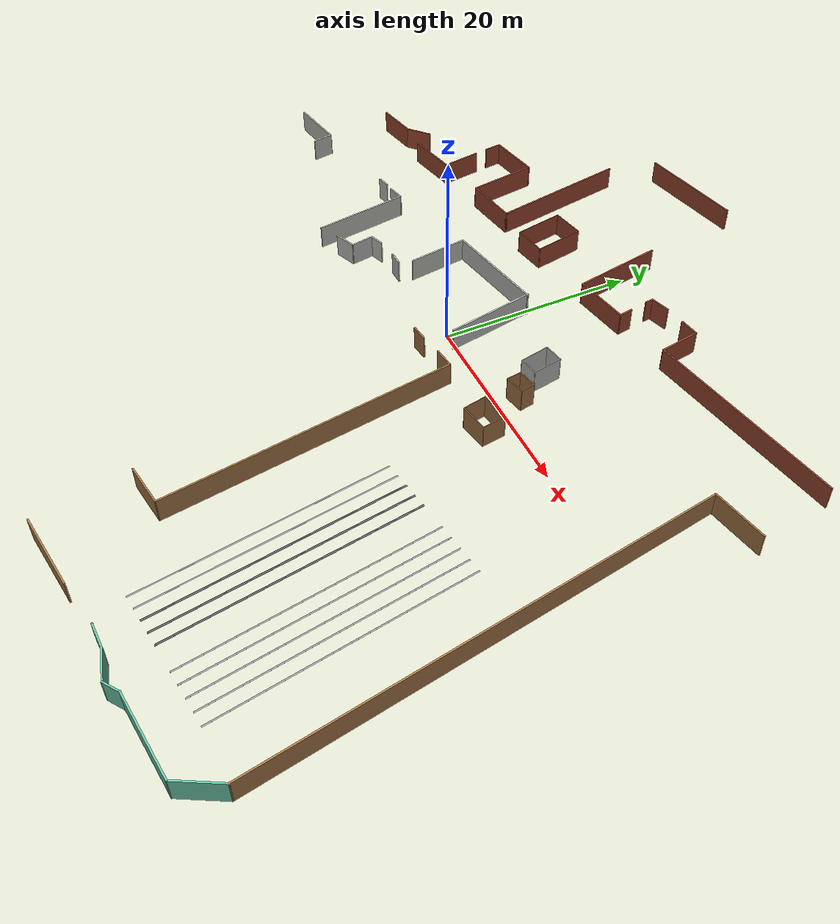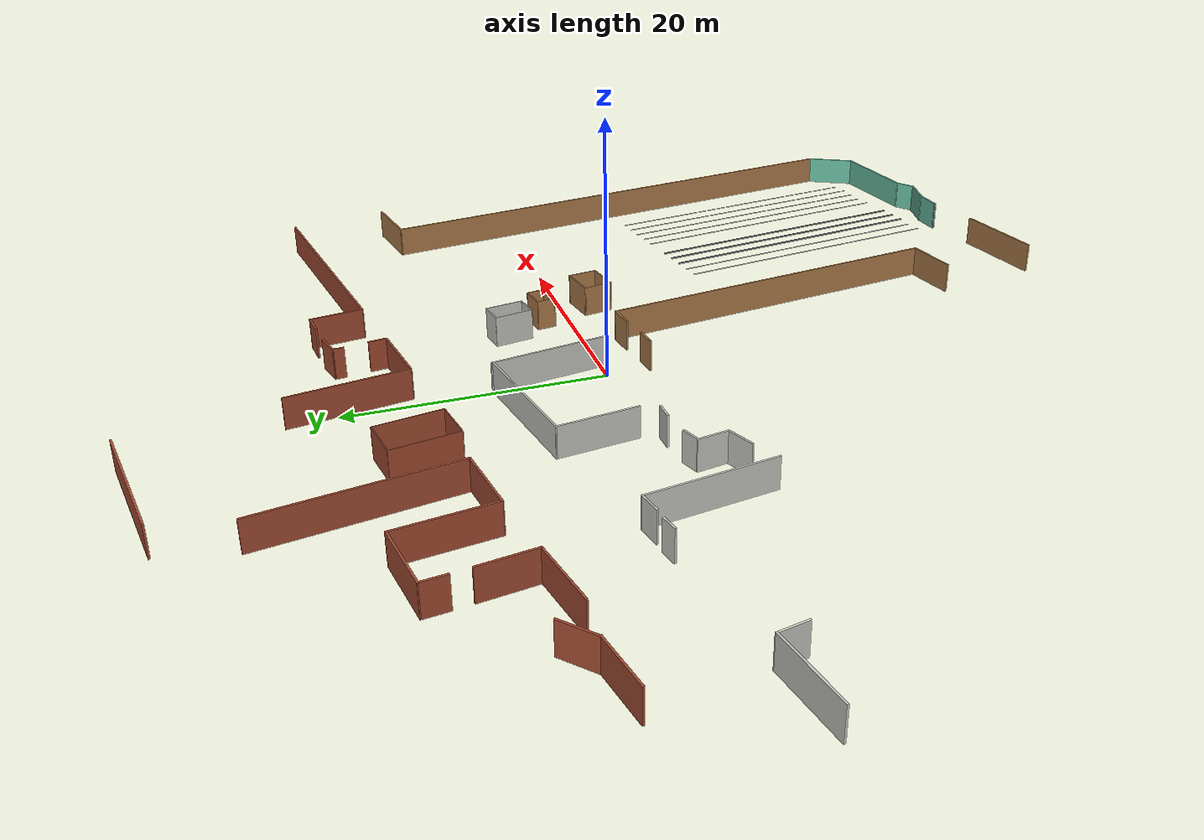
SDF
<sdf version="1.7">
 <world name="default">
  <model name="riseholme_encolsure">
   <link name="Wall_10">
    <pose>37.9809 28.2217 0 0 -0 -0.71569</pose>
    <collision name="Wall_10_Collision">
     <geometry><box><size>4.40408 0.15 2.5</size></box></geometry>
     <pose>0 0 1.25 0.0 0.0 0.0</pose>
    </collision>
    <visual name="Wall_10_Visual">
     <geometry><box><size>4.40408 0.15 2.5</size></box></geometry>
     <material>
      <ambient>0.435294 0.796078 0.67451 1</ambient>
      <script><uri>file://media/materials/scripts/gazebo.material</uri><name>Gazebo/Grey</name></script>
     </material>
     <pose>0 0 1.25 0.0 0.0 0.0</pose>
     <meta><layer>0</layer></meta>
    </visual>
   </link>
   <link name="Wall_100">
    <pose>-13.3343 -20.6396 0 0 -0 -1.5708</pose>
    <collision name="Wall_100_Collision">
     <geometry><box><size>1.38035 0.15 2.5</size></box></geometry>
     <pose>0 0 1.25 0.0 0.0 0.0</pose>
    </collision>
    <visual name="Wall_100_Visual">
     <geometry><box><size>1.38035 0.15 2.5</size></box></geometry>
     <material>
      <ambient>1 1 1 1</ambient>
      <script><uri>file://media/materials/scripts/gazebo.material</uri><name>Gazebo/CeilingTiled</name></script>
     </material>
     <pose>0 0 1.25 0.0 0.0 0.0</pose>
     <meta><layer>0</layer></meta>
    </visual>
   </link>
   <link name="Wall_102">
    <pose>-21.5336 -0.928753 0 0 -0 -0.039709</pose>
    <collision name="Wall_102_Collision">
     <geometry><box><size>5.25909 0.07 2.5</size></box></geometry>
     <pose>0 0 1.25 0.0 0.0 0.0</pose>
    </collision>
    <visual name="Wall_102_Visual">
     <geometry><box><size>5.25909 0.07 2.5</size></box></geometry>
     <material>
      <ambient>1 1 1 1</ambient>
      <script><uri>file://media/materials/scripts/gazebo.material</uri><name>Gazebo/Bricks</name></script>
     </material>
     <pose>0 0 1.25 0.0 0.0 0.0</pose>
     <meta><layer>0</layer></meta>
    </visual>
   </link>
   <link name="Wall_103">
    <pose>-19.0441 -2.73925 0 0 -0 -1.63105</pose>
    <collision name="Wall_103_Collision">
     <geometry><box><size>3.49121 0.07 2.5</size></box></geometry>
     <pose>0 0 1.25 0.0 0.0 0.0</pose>
    </collision>
    <visual name="Wall_103_Visual">
     <geometry><box><size>3.49121 0.07 2.5</size></box></geometry>
     <material>
      <ambient>1 1 1 1</ambient>
      <script><uri>file://media/materials/scripts/gazebo.material</uri><name>Gazebo/Bricks</name></script>
     </material>
     <pose>0 0 1.25 0.0 0.0 0.0</pose>
     <meta><layer>0</layer></meta>
    </visual>
   </link>
   <link name="Wall_104">
    <pose>-21.7333 -4.34992 0 0 -0 3.10417</pose>
    <collision name="Wall_104_Collision">
     <geometry><box><size>5.24692 0.07 2.5</size></box></geometry>
     <pose>0 0 1.25 0.0 0.0 0.0</pose>
    </collision>
    <visual name="Wall_104_Visual">
     <geometry><box><size>5.24692 0.07 2.5</size></box></geometry>
     <material>
      <ambient>1 1 1 1</ambient>
      <script><uri>file://media/materials/scripts/gazebo.material</uri><name>Gazebo/Bricks</name></script>
     </material>
     <pose>0 0 1.25 0.0 0.0 0.0</pose>
     <meta><layer>0</layer></meta>
    </visual>
   </link>
   <link name="Wall_105">
    <pose>-24.2229 -2.53786 0 0 -0 1.51436</pose>
    <collision name="Wall_105_Collision">
     <geometry><box><size>3.49429 0.07 2.5</size></box></geometry>
     <pose>0 0 1.25 0.0 0.0 0.0</pose>
    </collision>
    <visual name="Wall_105_Visual">
     <geometry><box><size>3.49429 0.07 2.5</size></box></geometry>
     <material>
      <ambient>1 1 1 1</ambient>
      <script><uri>file://media/materials/scripts/gazebo.material</uri><name>Gazebo/Bricks</name></script>
     </material>
     <pose>0 0 1.25 0.0 0.0 0.0</pose>
     <meta><layer>0</layer></meta>
    </visual>
   </link>
   <link name="Wall_11">
    <pose>39.2604 22.8017 0 0 -0 -1.6515</pose>
    <collision name="Wall_11_Collision">
     <geometry><box><size>8.22495 0.15 2.5</size></box></geometry>
     <pose>0 0 1.25 0.0 0.0 0.0</pose>
    </collision>
    <visual name="Wall_11_Visual">
     <geometry><box><size>8.22495 0.15 2.5</size></box></geometry>
     <material>
      <ambient>0.435294 0.796078 0.67451 1</ambient>
      <script><uri>file://media/materials/scripts/gazebo.material</uri><name>Gazebo/Grey</name></script>
     </material>
     <pose>0 0 1.25 0.0 0.0 0.0</pose>
     <meta><layer>0</layer></meta>
    </visual>
   </link>
   <link name="Wall_12">
    <pose>39.2604 18.0097 0 0 -0 -1.16969</pose>
    <collision name="Wall_12_Collision">
     <geometry><box><size>1.81774 0.15 2.5</size></box></geometry>
     <pose>0 0 1.25 0.0 0.0 0.0</pose>
    </collision>
    <visual name="Wall_12_Visual">
     <geometry><box><size>1.81774 0.15 2.5</size></box></geometry>
     <material>
      <ambient>0.435294 0.796078 0.67451 1</ambient>
      <script><uri>file://media/materials/scripts/gazebo.material</uri><name>Gazebo/Grey</name></script>
     </material>
     <pose>0 0 1.25 0.0 0.0 0.0</pose>
     <meta><layer>0</layer></meta>
    </visual>
   </link>
   <link name="Wall_13">
    <pose>38.9349 15.8932 0 0 -0 -2.02041</pose>
    <collision name="Wall_13_Collision">
     <geometry><box><size>3.14637 0.15 2.5</size></box></geometry>
     <pose>0 0 1.25 0.0 0.0 0.0</pose>
    </collision>
    <visual name="Wall_13_Visual">
     <geometry><box><size>3.14637 0.15 2.5</size></box></geometry>
     <material>
      <ambient>0.435294 0.796078 0.67451 1</ambient>
      <script><uri>file://media/materials/scripts/gazebo.material</uri><name>Gazebo/Grey</name></script>
     </material>
     <pose>0 0 1.25 0.0 0.0 0.0</pose>
     <meta><layer>0</layer></meta>
    </visual>
   </link>
   <link name="Wall_14">
    <pose>38.0974 13.4042 0 0 -0 -1.73296</pose>
    <collision name="Wall_14_Collision">
     <geometry><box><size>2.45986 0.15 2.5</size></box></geometry>
     <pose>0 0 1.25 0.0 0.0 0.0</pose>
    </collision>
    <visual name="Wall_14_Visual">
     <geometry><box><size>2.45986 0.15 2.5</size></box></geometry>
     <material>
      <ambient>0.435294 0.796078 0.67451 1</ambient>
      <script><uri>file://media/materials/scripts/gazebo.material</uri><name>Gazebo/Grey</name></script>
     </material>
     <pose>0 0 1.25 0.0 0.0 0.0</pose>
     <meta><layer>0</layer></meta>
    </visual>
   </link>
   <link name="Wall_15">
    <pose>37.9161 12.2642 0 0 -0 -0.015821</pose>
    <collision name="Wall_15_Collision">
     <geometry><box><size>0.16 0.15 2.5</size></box></geometry>
     <pose>0 0 1.25 0.0 0.0 0.0</pose>
    </collision>
    <visual name="Wall_15_Visual">
     <geometry><box><size>0.16 0.15 2.5</size></box></geometry>
     <material>
      <ambient>1 1 1 1</ambient>
      <script><uri>file://media/materials/scripts/gazebo.material</uri><name>Gazebo/Grey</name></script>
     </material>
     <pose>0 0 1.25 0.0 0.0 0.0</pose>
     <meta><layer>0</layer></meta>
    </visual>
   </link>
   <link name="Wall_17">
    <pose>37.7484 3.75021 0 0 -0 -1.62562</pose>
    <collision name="Wall_17_Collision">
     <geometry><box><size>7.7914 0.15 2.5</size></box></geometry>
     <pose>0 0 1.25 0.0 0.0 0.0</pose>
    </collision>
    <visual name="Wall_17_Visual">
     <geometry><box><size>7.7914 0.15 2.5</size></box></geometry>
     <material>
      <ambient>1 1 1 1</ambient>
      <script><uri>file://media/materials/scripts/gazebo.material</uri><name>Gazebo/Wood</name></script>
     </material>
     <pose>0 0 1.25 0.0 0.0 0.0</pose>
     <meta><layer>0</layer></meta>
    </visual>
   </link>
   <link name="Wall_19">
    <pose>28.3339 2.41776 0 0 -0 1.51709</pose>
    <collision name="Wall_19_Collision">
     <geometry><box><size>4.48297 0.15 2.5</size></box></geometry>
     <pose>0 0 1.25 0.0 0.0 0.0</pose>
    </collision>
    <visual name="Wall_19_Visual">
     <geometry><box><size>4.48297 0.15 2.5</size></box></geometry>
     <material>
      <ambient>1 1 1 1</ambient>
      <script><uri>file://media/materials/scripts/gazebo.material</uri><name>Gazebo/Wood</name></script>
     </material>
     <pose>0 0 1.25 0.0 0.0 0.0</pose>
     <meta><layer>0</layer></meta>
    </visual>
   </link>
   <link name="Wall_20">
    <pose>13.7719 5.65117 0 0 -0 3.06882</pose>
    <collision name="Wall_20_Collision">
     <geometry><box><size>29.5845 0.15 2.5</size></box></geometry>
     <pose>0 0 1.25 0.0 0.0 0.0</pose>
    </collision>
    <visual name="Wall_20_Visual">
     <geometry><box><size>29.5845 0.15 2.5</size></box></geometry>
     <material>
      <ambient>1 1 1 1</ambient>
      <script><uri>file://media/materials/scripts/gazebo.material</uri><name>Gazebo/Wood</name></script>
     </material>
     <pose>0 0 1.25 0.0 0.0 0.0</pose>
     <meta><layer>0</layer></meta>
    </visual>
   </link>
   <link name="Wall_21">
    <pose>-1.02272 5.6977 0 0 -0 -1.68395</pose>
    <collision name="Wall_21_Collision">
     <geometry><box><size>2.21023 0.15 2.5</size></box></geometry>
     <pose>0 0 1.25 0.0 0.0 0.0</pose>
    </collision>
    <visual name="Wall_21_Visual">
     <geometry><box><size>2.21023 0.15 2.5</size></box></geometry>
     <material>
      <ambient>1 1 1 1</ambient>
      <script><uri>file://media/materials/scripts/gazebo.material</uri><name>Gazebo/Wood</name></script>
     </material>
     <pose>0 0 1.25 0.0 0.0 0.0</pose>
     <meta><layer>0</layer></meta>
    </visual>
   </link>
   <link name="Wall_23">
    <pose>-1.32513 1.53381 0 0 -0 -1.68459</pose>
    <collision name="Wall_23_Collision">
     <geometry><box><size>1.78894 0.15 2.5</size></box></geometry>
     <pose>0 0 1.25 0.0 0.0 0.0</pose>
    </collision>
    <visual name="Wall_23_Visual">
     <geometry><box><size>1.78894 0.15 2.5</size></box></geometry>
     <material>
      <ambient>1 1 1 1</ambient>
      <script><uri>file://media/materials/scripts/gazebo.material</uri><name>Gazebo/Wood</name></script>
     </material>
     <pose>0 0 1.25 0.0 0.0 0.0</pose>
     <meta><layer>0</layer></meta>
    </visual>
   </link>
   <link name="Wall_25">
    <pose>-8.65264 3.41803 0 0 -0 3.10059</pose>
    <collision name="Wall_25_Collision">
     <geometry><box><size>9.22979 0.15 2.5</size></box></geometry>
     <pose>0 0 1.25 0.0 0.0 0.0</pose>
    </collision>
    <visual name="Wall_25_Visual">
     <geometry><box><size>9.22979 0.15 2.5</size></box></geometry>
     <material>
      <ambient>1 1 1 1</ambient>
      <script><uri>file://media/materials/scripts/gazebo.material</uri><name>Gazebo/CeilingTiled</name></script>
     </material>
     <pose>0 0 1.25 0.0 0.0 0.0</pose>
     <meta><layer>0</layer></meta>
    </visual>
   </link>
   <link name="Wall_28">
    <pose>-17.2596 27.7733 0 0 -0 -1.63194</pose>
    <collision name="Wall_28_Collision">
     <geometry><box><size>20.7055 0.15 2.5</size></box></geometry>
     <pose>0 0 1.25 0.0 0.0 0.0</pose>
    </collision>
    <visual name="Wall_28_Visual">
     <geometry><box><size>20.7055 0.15 2.5</size></box></geometry>
     <material>
      <ambient>1 1 1 1</ambient>
      <script><uri>file://media/materials/scripts/gazebo.material</uri><name>Gazebo/Bricks</name></script>
     </material>
     <pose>0 0 1.25 0.0 0.0 0.0</pose>
     <meta><layer>0</layer></meta>
    </visual>
   </link>
   <link name="Wall_29">
    <pose>-19.958 17.6311 0 0 -0 3.08547</pose>
    <collision name="Wall_29_Collision">
     <geometry><box><size>4.29716 0.15 2.5</size></box></geometry>
     <pose>0 0 1.25 0.0 0.0 0.0</pose>
    </collision>
    <visual name="Wall_29_Visual">
     <geometry><box><size>4.29716 0.15 2.5</size></box></geometry>
     <material>
      <ambient>1 1 1 1</ambient>
      <script><uri>file://media/materials/scripts/gazebo.material</uri><name>Gazebo/Bricks</name></script>
     </material>
     <pose>0 0 1.25 0.0 0.0 0.0</pose>
     <meta><layer>0</layer></meta>
    </visual>
   </link>
   <link name="Wall_30">
    <pose>-22.1213 16.7937 0 0 -0 -1.66805</pose>
    <collision name="Wall_30_Collision">
     <geometry><box><size>2.06654 0.15 2.5</size></box></geometry>
     <pose>0 0 1.25 0.0 0.0 0.0</pose>
    </collision>
    <visual name="Wall_30_Visual">
     <geometry><box><size>2.06654 0.15 2.5</size></box></geometry>
     <material>
      <ambient>1 1 1 1</ambient>
      <script><uri>file://media/materials/scripts/gazebo.material</uri><name>Gazebo/Bricks</name></script>
     </material>
     <pose>0 0 1.25 0.0 0.0 0.0</pose>
     <meta><layer>0</layer></meta>
    </visual>
   </link>
   <link name="Wall_32">
    <pose>-22.3539 12.7228 0 0 -0 -1.52321</pose>
    <collision name="Wall_32_Collision">
     <geometry><box><size>2.10622 0.15 2.5</size></box></geometry>
     <pose>0 0 1.25 0.0 0.0 0.0</pose>
    </collision>
    <visual name="Wall_32_Visual">
     <geometry><box><size>2.10622 0.15 2.5</size></box></geometry>
     <material>
      <ambient>1 1 1 1</ambient>
      <script><uri>file://media/materials/scripts/gazebo.material</uri><name>Gazebo/Bricks</name></script>
     </material>
     <pose>0 0 1.25 0.0 0.0 0.0</pose>
     <meta><layer>0</layer></meta>
    </visual>
   </link>
   <link name="Wall_33">
    <pose>-21.9352 11.6993 0 0 -0 -0.124355</pose>
    <collision name="Wall_33_Collision">
     <geometry><box><size>0.900176 0.15 2.5</size></box></geometry>
     <pose>0 0 1.25 0.0 0.0 0.0</pose>
    </collision>
    <visual name="Wall_33_Visual">
     <geometry><box><size>0.900176 0.15 2.5</size></box></geometry>
     <material>
      <ambient>1 1 1 1</ambient>
      <script><uri>file://media/materials/scripts/gazebo.material</uri><name>Gazebo/Bricks</name></script>
     </material>
     <pose>0 0 1.25 0.0 0.0 0.0</pose>
     <meta><layer>0</layer></meta>
    </visual>
   </link>
   <link name="Wall_35">
    <pose>-18.8879 11.5132 0 0 -0 -0.068856</pose>
    <collision name="Wall_35_Collision">
     <geometry><box><size>1.5024 0.15 2.5</size></box></geometry>
     <pose>0 0 1.25 0.0 0.0 0.0</pose>
    </collision>
    <visual name="Wall_35_Visual">
     <geometry><box><size>1.5024 0.15 2.5</size></box></geometry>
     <material>
      <ambient>1 1 1 1</ambient>
      <script><uri>file://media/materials/scripts/gazebo.material</uri><name>Gazebo/Bricks</name></script>
     </material>
     <pose>0 0 1.25 0.0 0.0 0.0</pose>
     <meta><layer>0</layer></meta>
    </visual>
   </link>
   <link name="Wall_36">
    <pose>-18.3994 8.6287 0 0 -0 -1.63628</pose>
    <collision name="Wall_36_Collision">
     <geometry><box><size>5.83811 0.15 2.5</size></box></geometry>
     <pose>0 0 1.25 0.0 0.0 0.0</pose>
    </collision>
    <visual name="Wall_36_Visual">
     <geometry><box><size>5.83811 0.15 2.5</size></box></geometry>
     <material>
      <ambient>1 1 1 1</ambient>
      <script><uri>file://media/materials/scripts/gazebo.material</uri><name>Gazebo/Bricks</name></script>
     </material>
     <pose>0 0 1.25 0.0 0.0 0.0</pose>
     <meta><layer>0</layer></meta>
    </visual>
   </link>
   <link name="Wall_44">
    <pose>-4.6011 11.5102 0 0 -0 -0.068625</pose>
    <collision name="Wall_44_Collision">
     <geometry><box><size>1.5575 0.07 2.5</size></box></geometry>
     <pose>0 0 1.25 0.0 0.0 0.0</pose>
    </collision>
    <visual name="Wall_44_Visual">
     <geometry><box><size>1.5575 0.07 2.5</size></box></geometry>
     <material>
      <ambient>1 1 1 1</ambient>
      <script><uri>file://media/materials/scripts/gazebo.material</uri><name>Gazebo/Wood</name></script>
     </material>
     <pose>0 0 1.25 0.0 0.0 0.0</pose>
     <meta><layer>0</layer></meta>
    </visual>
   </link>
   <link name="Wall_48">
    <pose>-3.8286 12.4807 0 0 -0 1.54095</pose>
    <collision name="Wall_48_Collision">
     <geometry><box><size>2.1141 0.07 2.5</size></box></geometry>
     <pose>0 0 1.25 0.0 0.0 0.0</pose>
    </collision>
    <visual name="Wall_48_Visual">
     <geometry><box><size>2.1141 0.07 2.5</size></box></geometry>
     <material>
      <ambient>1 1 1 1</ambient>
      <script><uri>file://media/materials/scripts/gazebo.material</uri><name>Gazebo/Wood</name></script>
     </material>
     <pose>0 0 1.25 0.0 0.0 0.0</pose>
     <meta><layer>0</layer></meta>
    </visual>
   </link>
   <link name="Wall_49">
    <pose>-4.52166 13.5281 0 0 -0 3.10583</pose>
    <collision name="Wall_49_Collision">
     <geometry><box><size>1.51805 0.07 2.5</size></box></geometry>
     <pose>0 0 1.25 0.0 0.0 0.0</pose>
    </collision>
    <visual name="Wall_49_Visual">
     <geometry><box><size>1.51805 0.07 2.5</size></box></geometry>
     <material>
      <ambient>1 1 1 1</ambient>
      <script><uri>file://media/materials/scripts/gazebo.material</uri><name>Gazebo/Wood</name></script>
     </material>
     <pose>0 0 1.25 0.0 0.0 0.0</pose>
     <meta><layer>0</layer></meta>
    </visual>
   </link>
   <link name="Wall_5">
    <pose>-8.44986 35.2004 0 0 -0 -1.61387</pose>
    <collision name="Wall_5_Collision">
     <geometry><box><size>5.55178 0.15 2.5</size></box></geometry>
     <pose>0 0 1.25 0.0 0.0 0.0</pose>
    </collision>
    <visual name="Wall_5_Visual">
     <geometry><box><size>5.55178 0.15 2.5</size></box></geometry>
     <material>
      <ambient>1 1 1 1</ambient>
      <script><uri>file://media/materials/scripts/gazebo.material</uri><name>Gazebo/Wood</name></script>
     </material>
     <pose>0 0 1.25 0.0 0.0 0.0</pose>
     <meta><layer>0</layer></meta>
    </visual>
   </link>
   <link name="Wall_56">
    <pose>-7.90402 12.4344 0 0 -0 -0.042937</pose>
    <collision name="Wall_56_Collision">
     <geometry><box><size>3.10664 0.07 2.5</size></box></geometry>
     <pose>0 0 1.25 0.0 0.0 0.0</pose>
    </collision>
    <visual name="Wall_56_Visual">
     <geometry><box><size>3.10664 0.07 2.5</size></box></geometry>
     <material>
      <ambient>1 1 1 1</ambient>
      <script><uri>file://media/materials/scripts/gazebo.material</uri><name>Gazebo/CeilingTiled</name></script>
     </material>
     <pose>0 0 1.25 0.0 0.0 0.0</pose>
     <meta><layer>0</layer></meta>
    </visual>
   </link>
   <link name="Wall_57">
    <pose>-6.4376 11.4016 0 0 -0 -1.62294</pose>
    <collision name="Wall_57_Collision">
     <geometry><box><size>2.00785 0.07 2.5</size></box></geometry>
     <pose>0 0 1.25 0.0 0.0 0.0</pose>
    </collision>
    <visual name="Wall_57_Visual">
     <geometry><box><size>2.00785 0.07 2.5</size></box></geometry>
     <material>
      <ambient>1 1 1 1</ambient>
      <script><uri>file://media/materials/scripts/gazebo.material</uri><name>Gazebo/CeilingTiled</name></script>
     </material>
     <pose>0 0 1.25 0.0 0.0 0.0</pose>
     <meta><layer>0</layer></meta>
    </visual>
   </link>
   <link name="Wall_58">
    <pose>-8.0156 10.4711 0 0 -0 3.11541</pose>
    <collision name="Wall_58_Collision">
     <geometry><box><size>3.12574 0.07 2.5</size></box></geometry>
     <pose>0 0 1.25 0.0 0.0 0.0</pose>
    </collision>
    <visual name="Wall_58_Visual">
     <geometry><box><size>3.12574 0.07 2.5</size></box></geometry>
     <material>
      <ambient>1 1 1 1</ambient>
      <script><uri>file://media/materials/scripts/gazebo.material</uri><name>Gazebo/CeilingTiled</name></script>
     </material>
     <pose>0 0 1.25 0.0 0.0 0.0</pose>
     <meta><layer>0</layer></meta>
    </visual>
   </link>
   <link name="Wall_59">
    <pose>-9.48241 11.5097 0 0 -0 1.50992</pose>
    <collision name="Wall_59_Collision">
     <geometry><box><size>2.06504 0.07 2.5</size></box></geometry>
     <pose>0 0 1.25 0.0 0.0 0.0</pose>
    </collision>
    <visual name="Wall_59_Visual">
     <geometry><box><size>2.06504 0.07 2.5</size></box></geometry>
     <material>
      <ambient>1 1 1 1</ambient>
      <script><uri>file://media/materials/scripts/gazebo.material</uri><name>Gazebo/CeilingTiled</name></script>
     </material>
     <pose>0 0 1.25 0.0 0.0 0.0</pose>
     <meta><layer>0</layer></meta>
    </visual>
   </link>
   <link name="Wall_6">
    <pose>13.9049 31.0596 0 0 -0 -0.0641</pose>
    <collision name="Wall_6_Collision">
     <geometry><box><size>45.1846 0.15 2.5</size></box></geometry>
     <pose>0 0 1.25 0.0 0.0 0.0</pose>
    </collision>
    <visual name="Wall_6_Visual">
     <geometry><box><size>45.1846 0.15 2.5</size></box></geometry>
     <material>
      <ambient>1 1 1 1</ambient>
      <script><uri>file://media/materials/scripts/gazebo.material</uri><name>Gazebo/Wood</name></script>
     </material>
     <pose>0 0 1.25 0.0 0.0 0.0</pose>
     <meta><layer>0</layer></meta>
    </visual>
   </link>
   <link name="Wall_61">
    <pose>0.595403 14.8812 0 0 -0 -0.06822</pose>
    <collision name="Wall_61_Collision">
     <geometry><box><size>2.44653 0.07 2.5</size></box></geometry>
     <pose>0 0 1.25 0.0 0.0 0.0</pose>
    </collision>
    <visual name="Wall_61_Visual">
     <geometry><box><size>2.44653 0.07 2.5</size></box></geometry>
     <material>
      <ambient>1 1 1 1</ambient>
      <script><uri>file://media/materials/scripts/gazebo.material</uri><name>Gazebo/Wood</name></script>
     </material>
     <pose>0 0 1.25 0.0 0.0 0.0</pose>
     <meta><layer>0</layer></meta>
    </visual>
   </link>
   <link name="Wall_62">
    <pose>1.7059 13.3602 0 0 -0 -1.62283</pose>
    <collision name="Wall_62_Collision">
     <geometry><box><size>2.9539 0.07 2.5</size></box></geometry>
     <pose>0 0 1.25 0.0 0.0 0.0</pose>
    </collision>
    <visual name="Wall_62_Visual">
     <geometry><box><size>2.9539 0.07 2.5</size></box></geometry>
     <material>
      <ambient>1 1 1 1</ambient>
      <script><uri>file://media/materials/scripts/gazebo.material</uri><name>Gazebo/Wood</name></script>
     </material>
     <pose>0 0 1.25 0.0 0.0 0.0</pose>
     <meta><layer>0</layer></meta>
    </visual>
   </link>
   <link name="Wall_63">
    <pose>0.439403 11.9547 0 0 -0 3.11265</pose>
    <collision name="Wall_63_Collision">
     <geometry><box><size>2.45355 0.07 2.5</size></box></geometry>
     <pose>0 0 1.25 0.0 0.0 0.0</pose>
    </collision>
    <visual name="Wall_63_Visual">
     <geometry><box><size>2.45355 0.07 2.5</size></box></geometry>
     <material>
      <ambient>1 1 1 1</ambient>
      <script><uri>file://media/materials/scripts/gazebo.material</uri><name>Gazebo/Wood</name></script>
     </material>
     <pose>0 0 1.25 0.0 0.0 0.0</pose>
     <meta><layer>0</layer></meta>
    </visual>
   </link>
   <link name="Wall_64">
    <pose>-0.665097 13.4757 0 0 -0 1.51234</pose>
    <collision name="Wall_64_Collision">
     <geometry><box><size>3.04759 0.07 2.5</size></box></geometry>
     <pose>0 0 1.25 0.0 0.0 0.0</pose>
    </collision>
    <visual name="Wall_64_Visual">
     <geometry><box><size>3.04759 0.07 2.5</size></box></geometry>
     <material>
      <ambient>1 1 1 1</ambient>
      <script><uri>file://media/materials/scripts/gazebo.material</uri><name>Gazebo/Wood</name></script>
     </material>
     <pose>0 0 1.25 0.0 0.0 0.0</pose>
     <meta><layer>0</layer></meta>
    </visual>
   </link>
   <link name="Wall_66">
    <pose>-5.29416 12.5576 0 0 -0 1.52172</pose>
    <collision name="Wall_66_Collision">
     <geometry><box><size>2.06517 0.07 2.5</size></box></geometry>
     <pose>0 0 1.25 0.0 0.0 0.0</pose>
    </collision>
    <visual name="Wall_66_Visual">
     <geometry><box><size>2.06517 0.07 2.5</size></box></geometry>
     <material>
      <ambient>1 1 1 1</ambient>
      <script><uri>file://media/materials/scripts/gazebo.material</uri><name>Gazebo/Wood</name></script>
     </material>
     <pose>0 0 1.25 0.0 0.0 0.0</pose>
     <meta><layer>0</layer></meta>
    </visual>
   </link>
   <link name="Wall_68">
    <pose>-23.2225 6.00059 0 0 -0 3.09637</pose>
    <collision name="Wall_68_Collision">
     <geometry><box><size>9.43343 0.15 2.5</size></box></geometry>
     <pose>0 0 1.25 0.0 0.0 0.0</pose>
    </collision>
    <visual name="Wall_68_Visual">
     <geometry><box><size>9.43343 0.15 2.5</size></box></geometry>
     <material>
      <ambient>1 1 1 1</ambient>
      <script><uri>file://media/materials/scripts/gazebo.material</uri><name>Gazebo/Bricks</name></script>
     </material>
     <pose>0 0 1.25 0.0 0.0 0.0</pose>
     <meta><layer>0</layer></meta>
    </visual>
   </link>
   <link name="Wall_70">
    <pose>-39.3963 0.795734 0 0 -0 -1.61018</pose>
    <collision name="Wall_70_Collision">
     <geometry><box><size>11.2057 0.15 2.5</size></box></geometry>
     <pose>0 0 1.25 0.0 0.0 0.0</pose>
    </collision>
    <visual name="Wall_70_Visual">
     <geometry><box><size>11.2057 0.15 2.5</size></box></geometry>
     <material>
      <ambient>1 1 1 1</ambient>
      <script><uri>file://media/materials/scripts/gazebo.material</uri><name>Gazebo/Bricks</name></script>
     </material>
     <pose>0 0 1.25 0.0 0.0 0.0</pose>
     <meta><layer>0</layer></meta>
    </visual>
   </link>
   <link name="Wall_72">
    <pose>-27.4513 -7.47598 0 0 -0 -0.048651</pose>
    <collision name="Wall_72_Collision">
     <geometry><box><size>14.6971 0.15 2.5</size></box></geometry>
     <pose>0 0 1.25 0.0 0.0 0.0</pose>
    </collision>
    <visual name="Wall_72_Visual">
     <geometry><box><size>14.6971 0.15 2.5</size></box></geometry>
     <material>
      <ambient>1 1 1 1</ambient>
      <script><uri>file://media/materials/scripts/gazebo.material</uri><name>Gazebo/Bricks</name></script>
     </material>
     <pose>0 0 1.25 0.0 0.0 0.0</pose>
     <meta><layer>0</layer></meta>
    </visual>
   </link>
   <link name="Wall_73">
    <pose>-20.404 -10.6323 0 0 -0 -1.64831</pose>
    <collision name="Wall_73_Collision">
     <geometry><box><size>5.77205 0.15 2.5</size></box></geometry>
     <pose>0 0 1.25 0.0 0.0 0.0</pose>
    </collision>
    <visual name="Wall_73_Visual">
     <geometry><box><size>5.77205 0.15 2.5</size></box></geometry>
     <material>
      <ambient>1 1 1 1</ambient>
      <script><uri>file://media/materials/scripts/gazebo.material</uri><name>Gazebo/Bricks</name></script>
     </material>
     <pose>0 0 1.25 0.0 0.0 0.0</pose>
     <meta><layer>0</layer></meta>
    </visual>
   </link>
   <link name="Wall_74">
    <pose>-24.2134 -13.1628 0 0 -0 3.06598</pose>
    <collision name="Wall_74_Collision">
     <geometry><box><size>7.35391 0.15 2.5</size></box></geometry>
     <pose>0 0 1.25 0.0 0.0 0.0</pose>
    </collision>
    <visual name="Wall_74_Visual">
     <geometry><box><size>7.35391 0.15 2.5</size></box></geometry>
     <material>
      <ambient>1 1 1 1</ambient>
      <script><uri>file://media/materials/scripts/gazebo.material</uri><name>Gazebo/Bricks</name></script>
     </material>
     <pose>0 0 1.25 0.0 0.0 0.0</pose>
     <meta><layer>0</layer></meta>
    </visual>
   </link>
   <link name="Wall_75">
    <pose>-27.9683 -15.6388 0 0 -0 -1.63013</pose>
    <collision name="Wall_75_Collision">
     <geometry><box><size>5.65602 0.15 2.5</size></box></geometry>
     <pose>0 0 1.25 0.0 0.0 0.0</pose>
    </collision>
    <visual name="Wall_75_Visual">
     <geometry><box><size>5.65602 0.15 2.5</size></box></geometry>
     <material>
      <ambient>1 1 1 1</ambient>
      <script><uri>file://media/materials/scripts/gazebo.material</uri><name>Gazebo/Bricks</name></script>
     </material>
     <pose>0 0 1.25 0.0 0.0 0.0</pose>
     <meta><layer>0</layer></meta>
    </visual>
   </link>
   <link name="Wall_76">
    <pose>-27.2608 -18.4686 0 0 -0 -0.093477</pose>
    <collision name="Wall_76_Collision">
     <geometry><box><size>1.89905 0.15 2.5</size></box></geometry>
     <pose>0 0 1.25 0.0 0.0 0.0</pose>
    </collision>
    <visual name="Wall_76_Visual">
     <geometry><box><size>1.89905 0.15 2.5</size></box></geometry>
     <material>
      <ambient>1 1 1 1</ambient>
      <script><uri>file://media/materials/scripts/gazebo.material</uri><name>Gazebo/Bricks</name></script>
     </material>
     <pose>0 0 1.25 0.0 0.0 0.0</pose>
     <meta><layer>0</layer></meta>
    </visual>
   </link>
   <link name="Wall_78">
    <pose>-22.8801 -18.7952 0 0 -0 -0.066568</pose>
    <collision name="Wall_78_Collision">
     <geometry><box><size>4.2405 0.15 2.5</size></box></geometry>
     <pose>0 0 1.25 0.0 0.0 0.0</pose>
    </collision>
    <visual name="Wall_78_Visual">
     <geometry><box><size>4.2405 0.15 2.5</size></box></geometry>
     <material>
      <ambient>1 1 1 1</ambient>
      <script><uri>file://media/materials/scripts/gazebo.material</uri><name>Gazebo/Bricks</name></script>
     </material>
     <pose>0 0 1.25 0.0 0.0 0.0</pose>
     <meta><layer>0</layer></meta>
    </visual>
   </link>
   <link name="Wall_79">
    <pose>-20.921 -21.6794 0 0 -0 -1.60049</pose>
    <collision name="Wall_79_Collision">
     <geometry><box><size>5.64876 0.15 2.5</size></box></geometry>
     <pose>0 0 1.25 0.0 0.0 0.0</pose>
    </collision>
    <visual name="Wall_79_Visual">
     <geometry><box><size>5.64876 0.15 2.5</size></box></geometry>
     <material>
      <ambient>1 1 1 1</ambient>
      <script><uri>file://media/materials/scripts/gazebo.material</uri><name>Gazebo/Bricks</name></script>
     </material>
     <pose>0 0 1.25 0.0 0.0 0.0</pose>
     <meta><layer>0</layer></meta>
    </visual>
   </link>
   <link name="Wall_81">
    <pose>-22.5536 -26.305 0 0 -0 -1.0637</pose>
    <collision name="Wall_81_Collision">
     <geometry><box><size>2.9514 0.15 2.5</size></box></geometry>
     <pose>0 0 1.25 0.0 0.0 0.0</pose>
    </collision>
    <visual name="Wall_81_Visual">
     <geometry><box><size>2.9514 0.15 2.5</size></box></geometry>
     <material>
      <ambient>1 1 1 1</ambient>
      <script><uri>file://media/materials/scripts/gazebo.material</uri><name>Gazebo/Bricks</name></script>
     </material>
     <pose>0 0 1.25 0.0 0.0 0.0</pose>
     <meta><layer>0</layer></meta>
    </visual>
   </link>
   <link name="Wall_82">
    <pose>-21.955 -29.7062 0 0 -0 -1.60828</pose>
    <collision name="Wall_82_Collision">
     <geometry><box><size>4.50659 0.15 2.5</size></box></geometry>
     <pose>0 0 1.25 0.0 0.0 0.0</pose>
    </collision>
    <visual name="Wall_82_Visual">
     <geometry><box><size>4.50659 0.15 2.5</size></box></geometry>
     <material>
      <ambient>1 1 1 1</ambient>
      <script><uri>file://media/materials/scripts/gazebo.material</uri><name>Gazebo/Bricks</name></script>
     </material>
     <pose>0 0 1.25 0.0 0.0 0.0</pose>
     <meta><layer>0</layer></meta>
    </visual>
   </link>
   <link name="Wall_84">
    <pose>-14.2002 -35.0121 0 0 -0 1.51679</pose>
    <collision name="Wall_84_Collision">
     <geometry><box><size>6.19934 0.15 2.5</size></box></geometry>
     <pose>0 0 1.25 0.0 0.0 0.0</pose>
    </collision>
    <visual name="Wall_84_Visual">
     <geometry><box><size>6.19934 0.15 2.5</size></box></geometry>
     <material>
      <ambient>1 1 1 1</ambient>
      <script><uri>file://media/materials/scripts/gazebo.material</uri><name>Gazebo/CeilingTiled</name></script>
     </material>
     <pose>0 0 1.25 0.0 0.0 0.0</pose>
     <meta><layer>0</layer></meta>
    </visual>
   </link>
   <link name="Wall_85">
    <pose>-12.9758 -32.019 0 0 -0 -0.025635</pose>
    <collision name="Wall_85_Collision">
     <geometry><box><size>2.27304 0.15 2.5</size></box></geometry>
     <pose>0 0 1.25 0.0 0.0 0.0</pose>
    </collision>
    <visual name="Wall_85_Visual">
     <geometry><box><size>2.27304 0.15 2.5</size></box></geometry>
     <material>
      <ambient>1 1 1 1</ambient>
      <script><uri>file://media/materials/scripts/gazebo.material</uri><name>Gazebo/CeilingTiled</name></script>
     </material>
     <pose>0 0 1.25 0.0 0.0 0.0</pose>
     <meta><layer>0</layer></meta>
    </visual>
   </link>
   <link name="Wall_87">
    <pose>-13.358 -1.71119 0 0 -0 -1.61901</pose>
    <collision name="Wall_87_Collision">
     <geometry><box><size>10.9517 0.15 2.5</size></box></geometry>
     <pose>0 0 1.25 0.0 0.0 0.0</pose>
    </collision>
    <visual name="Wall_87_Visual">
     <geometry><box><size>10.9517 0.15 2.5</size></box></geometry>
     <material>
      <ambient>1 1 1 1</ambient>
      <script><uri>file://media/materials/scripts/gazebo.material</uri><name>Gazebo/CeilingTiled</name></script>
     </material>
     <pose>0 0 1.25 0.0 0.0 0.0</pose>
     <meta><layer>0</layer></meta>
    </visual>
   </link>
   <link name="Wall_88">
    <pose>-10.5424 -7.34239 0 0 -0 -0.076772</pose>
    <collision name="Wall_88_Collision">
     <geometry><box><size>6.3199 0.15 2.5</size></box></geometry>
     <pose>0 0 1.25 0.0 0.0 0.0</pose>
    </collision>
    <visual name="Wall_88_Visual">
     <geometry><box><size>6.3199 0.15 2.5</size></box></geometry>
     <material>
      <ambient>1 1 1 1</ambient>
      <script><uri>file://media/materials/scripts/gazebo.material</uri><name>Gazebo/CeilingTiled</name></script>
     </material>
     <pose>0 0 1.25 0.0 0.0 0.0</pose>
     <meta><layer>0</layer></meta>
    </visual>
   </link>
   <link name="Wall_90">
    <pose>-6.33083 -8.97496 0 0 -0 -1.77481</pose>
    <collision name="Wall_90_Collision">
     <geometry><box><size>1.55137 0.15 2.5</size></box></geometry>
     <pose>0 0 1.25 0.0 0.0 0.0</pose>
    </collision>
    <visual name="Wall_90_Visual">
     <geometry><box><size>1.55137 0.15 2.5</size></box></geometry>
     <material>
      <ambient>1 1 1 1</ambient>
      <script><uri>file://media/materials/scripts/gazebo.material</uri><name>Gazebo/CeilingTiled</name></script>
     </material>
     <pose>0 0 1.25 0.0 0.0 0.0</pose>
     <meta><layer>0</layer></meta>
    </visual>
   </link>
   <link name="Wall_92">
    <pose>-6.59109 -12.6423 0 0 -0 -1.47113</pose>
    <collision name="Wall_92_Collision">
     <geometry><box><size>1.57671 0.15 2.5</size></box></geometry>
     <pose>0 0 1.25 0.0 0.0 0.0</pose>
    </collision>
    <visual name="Wall_92_Visual">
     <geometry><box><size>1.57671 0.15 2.5</size></box></geometry>
     <material>
      <ambient>1 1 1 1</ambient>
      <script><uri>file://media/materials/scripts/gazebo.material</uri><name>Gazebo/CeilingTiled</name></script>
     </material>
     <pose>0 0 1.25 0.0 0.0 0.0</pose>
     <meta><layer>0</layer></meta>
    </visual>
   </link>
   <link name="Wall_94">
    <pose>-5.33709 -13.4468 0 0 -0 -0.039979</pose>
    <collision name="Wall_94_Collision">
     <geometry><box><size>2.51794 0.15 2.5</size></box></geometry>
     <pose>0 0 1.25 0.0 0.0 0.0</pose>
    </collision>
    <visual name="Wall_94_Visual">
     <geometry><box><size>2.51794 0.15 2.5</size></box></geometry>
     <material>
      <ambient>1 1 1 1</ambient>
      <script><uri>file://media/materials/scripts/gazebo.material</uri><name>Gazebo/CeilingTiled</name></script>
     </material>
     <pose>0 0 1.25 0.0 0.0 0.0</pose>
     <meta><layer>0</layer></meta>
    </visual>
   </link>
   <link name="Wall_95">
    <pose>-3.98844 -14.6062 0 0 -0 -1.42295</pose>
    <collision name="Wall_95_Collision">
     <geometry><box><size>2.39862 0.15 2.5</size></box></geometry>
     <pose>0 0 1.25 0.0 0.0 0.0</pose>
    </collision>
    <visual name="Wall_95_Visual">
     <geometry><box><size>2.39862 0.15 2.5</size></box></geometry>
     <material>
      <ambient>1 1 1 1</ambient>
      <script><uri>file://media/materials/scripts/gazebo.material</uri><name>Gazebo/CeilingTiled</name></script>
     </material>
     <pose>0 0 1.25 0.0 0.0 0.0</pose>
     <meta><layer>0</layer></meta>
    </visual>
   </link>
   <link name="Wall_97">
    <pose>-8.20001 -17.5874 0 0 -0 3.07947</pose>
    <collision name="Wall_97_Collision">
     <geometry><box><size>10.0592 0.15 2.5</size></box></geometry>
     <pose>0 0 1.25 0.0 0.0 0.0</pose>
    </collision>
    <visual name="Wall_97_Visual">
     <geometry><box><size>10.0592 0.15 2.5</size></box></geometry>
     <material>
      <ambient>1 1 1 1</ambient>
      <script><uri>file://media/materials/scripts/gazebo.material</uri><name>Gazebo/CeilingTiled</name></script>
     </material>
     <pose>0 0 1.25 0.0 0.0 0.0</pose>
     <meta><layer>0</layer></meta>
    </visual>
   </link>
   <link name="Wall_98">
    <pose>-13.1687 -18.1552 0 0 -0 -1.59782</pose>
    <collision name="Wall_98_Collision">
     <geometry><box><size>1.90152 0.15 2.5</size></box></geometry>
     <pose>0 0 1.25 0.0 0.0 0.0</pose>
    </collision>
    <visual name="Wall_98_Visual">
     <geometry><box><size>1.90152 0.15 2.5</size></box></geometry>
     <material>
      <ambient>1 1 1 1</ambient>
      <script><uri>file://media/materials/scripts/gazebo.material</uri><name>Gazebo/CeilingTiled</name></script>
     </material>
     <pose>0 0 1.25 0.0 0.0 0.0</pose>
     <meta><layer>0</layer></meta>
    </visual>
   </link>
   <static>1</static>
   <pose>-0.453277 -4.89704 0 0 0 -1.35297</pose>
  </model>
  <model name="tray_1">
   <static>1</static>
   <link name="link_0">
    <collision name="collision"><geometry><box><size>24.365 0.15 0.005</size></box></geometry></collision>
    <visual name="visual">
     <geometry><box><size>24.365 0.15 0.005</size></box></geometry>
     <material>
      <script><uri>file://media/materials/scripts/gazebo.material</uri><name>Gazebo/Grey</name></script>
      <emissive>0 0 0 1</emissive>
      <shader type="vertex"><normal_map>__default__</normal_map></shader>
      <specular>0.01 0.01 0.01 1</specular>
      <lighting>1</lighting>
      <ambient>0.7 0.7 0.7 1</ambient>
      <diffuse>0.3 0.3 0.3 1</diffuse>
     </material>
    </visual>
    <pose>20.921 -23.47 1.14965 0 -0 -1.42318</pose>
   </link>
  </model>
  <model name="tray_2">
   <static>1</static>
   <link name="link_0">
    <collision name="collision"><geometry><box><size>24.365 0.15 0.005</size></box></geometry></collision>
    <visual name="visual">
     <geometry><box><size>24.365 0.15 0.005</size></box></geometry>
     <material>
      <script><uri>file://media/materials/scripts/gazebo.material</uri><name>Gazebo/Grey</name></script>
      <emissive>0 0 0 1</emissive>
      <shader type="vertex"><normal_map>__default__</normal_map></shader>
      <specular>0.01 0.01 0.01 1</specular>
      <lighting>1</lighting>
      <ambient>0.7 0.7 0.7 1</ambient>
      <diffuse>0.3 0.3 0.3 1</diffuse>
     </material>
    </visual>
    <pose>19.632 -23.666 1.14965 0 -0 -1.42318</pose>
   </link>
  </model>
  <model name="tray_3">
   <static>1</static>
   <link name="link_0">
    <collision name="collision"><geometry><box><size>24.365 0.15 0.005</size></box></geometry></collision>
    <visual name="visual">
     <geometry><box><size>24.365 0.15 0.005</size></box></geometry>
     <material>
      <script><uri>file://media/materials/scripts/gazebo.material</uri><name>Gazebo/Grey</name></script>
      <emissive>0 0 0 1</emissive>
      <shader type="vertex"><normal_map>__default__</normal_map></shader>
      <specular>0.01 0.01 0.01 1</specular>
      <lighting>1</lighting>
      <ambient>0.7 0.7 0.7 1</ambient>
      <diffuse>0.3 0.3 0.3 1</diffuse>
     </material>
    </visual>
    <pose>18.312 -23.848 1.14965 0 -0 -1.42318</pose>
   </link>
  </model>
  <model name="tray_4">
   <static>1</static>
   <link name="link_0">
    <collision name="collision"><geometry><box><size>24.365 0.15 0.005</size></box></geometry></collision>
    <visual name="visual">
     <geometry><box><size>24.365 0.15 0.005</size></box></geometry>
     <material>
      <script><uri>file://media/materials/scripts/gazebo.material</uri><name>Gazebo/Grey</name></script>
      <emissive>0 0 0 1</emissive>
      <shader type="vertex"><normal_map>__default__</normal_map></shader>
      <specular>0.01 0.01 0.01 1</specular>
      <lighting>1</lighting>
      <ambient>0.7 0.7 0.7 1</ambient>
      <diffuse>0.3 0.3 0.3 1</diffuse>
     </material>
    </visual>
    <pose>16.974 -24.053 1.14965 0 -0 -1.42318</pose>
   </link>
  </model>
  <model name="tray_5">
   <static>1</static>
   <link name="link_0">
    <collision name="collision"><geometry><box><size>24.365 0.15 0.005</size></box></geometry></collision>
    <visual name="visual">
     <geometry><box><size>24.365 0.15 0.005</size></box></geometry>
     <material>
      <script><uri>file://media/materials/scripts/gazebo.material</uri><name>Gazebo/Grey</name></script>
      <emissive>0 0 0 1</emissive>
      <shader type="vertex"><normal_map>__default__</normal_map></shader>
      <specular>0.01 0.01 0.01 1</specular>
      <lighting>1</lighting>
      <ambient>0.7 0.7 0.7 1</ambient>
      <diffuse>0.3 0.3 0.3 1</diffuse>
     </material>
    </visual>
    <pose>15.659 -24.25 1.14965 0 -0 -1.42318</pose>
   </link>
  </model>
  <model name="tray_8">
   <static>1</static>
   <link name="link_0">
    <collision name="collision"><geometry><box><size>24.365 0.15 0.005</size></box></geometry></collision>
    <visual name="visual">
     <geometry><box><size>24.365 0.15 0.005</size></box></geometry>
     <material>
      <script><uri>file://media/materials/scripts/gazebo.material</uri><name>Gazebo/Grey</name></script>
      <emissive>0 0 0 1</emissive>
      <shader type="vertex"><normal_map>__default__</normal_map></shader>
      <specular>0.01 0.01 0.01 1</specular>
      <lighting>1</lighting>
      <ambient>0.7 0.7 0.7 1</ambient>
      <diffuse>0.3 0.3 0.3 1</diffuse>
     </material>
    </visual>
    <pose>28.892 -22.306 1.14965 0 -0 -1.42318</pose>
   </link>
  </model>
  <model name="tray_9">
   <static>1</static>
   <link name="link_0">
    <collision name="collision"><geometry><box><size>24.365 0.15 0.005</size></box></geometry></collision>
    <visual name="visual">
     <geometry><box><size>24.365 0.15 0.005</size></box></geometry>
     <material>
      <script><uri>file://media/materials/scripts/gazebo.material</uri><name>Gazebo/Grey</name></script>
      <emissive>0 0 0 1</emissive>
      <shader type="vertex"><normal_map>__default__</normal_map></shader>
      <specular>0.01 0.01 0.01 1</specular>
      <lighting>1</lighting>
      <ambient>0.7 0.7 0.7 1</ambient>
      <diffuse>0.3 0.3 0.3 1</diffuse>
     </material>
    </visual>
    <pose>27.568 -22.492 1.14965 0 -0 -1.42318</pose>
   </link>
  </model>
  <model name="tray_10">
   <static>1</static>
   <link name="link_0">
    <collision name="collision"><geometry><box><size>24.365 0.15 0.005</size></box></geometry></collision>
    <visual name="visual">
     <geometry><box><size>24.365 0.15 0.005</size></box></geometry>
     <material>
      <script><uri>file://media/materials/scripts/gazebo.material</uri><name>Gazebo/Grey</name></script>
      <emissive>0 0 0 1</emissive>
      <shader type="vertex"><normal_map>__default__</normal_map></shader>
      <specular>0.01 0.01 0.01 1</specular>
      <lighting>1</lighting>
      <ambient>0.7 0.7 0.7 1</ambient>
      <diffuse>0.3 0.3 0.3 1</diffuse>
     </material>
    </visual>
    <pose>26.244 -22.682 1.14965 0 -0 -1.42318</pose>
   </link>
  </model>
  <model name="tray_11">
   <static>1</static>
   <link name="link_0">
    <collision name="collision"><geometry><box><size>24.365 0.15 0.005</size></box></geometry></collision>
    <visual name="visual">
     <geometry><box><size>24.365 0.15 0.005</size></box></geometry>
     <material>
      <script><uri>file://media/materials/scripts/gazebo.material</uri><name>Gazebo/Grey</name></script>
      <emissive>0 0 0 1</emissive>
      <shader type="vertex"><normal_map>__default__</normal_map></shader>
      <specular>0.01 0.01 0.01 1</specular>
      <lighting>1</lighting>
      <ambient>0.7 0.7 0.7 1</ambient>
      <diffuse>0.3 0.3 0.3 1</diffuse>
     </material>
    </visual>
    <pose>24.931 -22.867 1.14965 0 -0 -1.42318</pose>
   </link>
  </model>
  <model name="tray_12">
   <static>1</static>
   <link name="link_0">
    <collision name="collision"><geometry><box><size>24.365 0.15 0.005</size></box></geometry></collision>
    <visual name="visual">
     <geometry><box><size>24.365 0.15 0.005</size></box></geometry>
     <material>
      <script><uri>file://media/materials/scripts/gazebo.material</uri><name>Gazebo/Grey</name></script>
      <emissive>0 0 0 1</emissive>
      <shader type="vertex"><normal_map>__default__</normal_map></shader>
      <specular>0.01 0.01 0.01 1</specular>
      <lighting>1</lighting>
      <ambient>0.7 0.7 0.7 1</ambient>
      <diffuse>0.3 0.3 0.3 1</diffuse>
     </material>
    </visual>
    <pose>23.622 -23.069 1.14965 0 -0 -1.42318</pose>
   </link>
  </model>
  <model name="tray_p2_2">
   <static>1</static>
   <link name="link_0">
    <collision name="collision"><geometry><box><size>24.36 0.085 0.005</size></box></geometry></collision>
    <visual name="visual">
     <geometry><box><size>24.36 0.085 0.005</size></box></geometry>
     <material>
      <script><uri>file://media/materials/scripts/gazebo.material</uri><name>Gazebo/Grey</name></script>
      <emissive>0 0 0 1</emissive>
      <shader type="vertex"><normal_map>__default__</normal_map></shader>
      <specular>0.01 0.01 0.01 1</specular>
      <lighting>1</lighting>
      <ambient>0.7 0.7 0.7 1</ambient>
      <diffuse>0.3 0.3 0.3 1</diffuse>
     </material>
    </visual>
    <pose>20.996 -23.47 1.19165 1.5707 -0 -1.42318</pose>
   </link>
  </model>
  <model name="tray_p2_3">
   <static>1</static>
   <link name="link_0">
    <collision name="collision"><geometry><box><size>24.36 0.085 0.005</size></box></geometry></collision>
    <visual name="visual">
     <geometry><box><size>24.36 0.085 0.005</size></box></geometry>
     <material>
      <script><uri>file://media/materials/scripts/gazebo.material</uri><name>Gazebo/Grey</name></script>
      <emissive>0 0 0 1</emissive>
      <shader type="vertex"><normal_map>__default__</normal_map></shader>
      <specular>0.01 0.01 0.01 1</specular>
      <lighting>1</lighting>
      <ambient>0.7 0.7 0.7 1</ambient>
      <diffuse>0.3 0.3 0.3 1</diffuse>
     </material>
    </visual>
    <pose>20.846 -23.47 1.19165 1.5707 -0 -1.42318</pose>
   </link>
  </model>
  <model name="tray_p2_4">
   <static>1</static>
   <link name="link_0">
    <collision name="collision"><geometry><box><size>24.36 0.085 0.005</size></box></geometry></collision>
    <visual name="visual">
     <geometry><box><size>24.36 0.085 0.005</size></box></geometry>
     <material>
      <script><uri>file://media/materials/scripts/gazebo.material</uri><name>Gazebo/Grey</name></script>
      <emissive>0 0 0 1</emissive>
      <shader type="vertex"><normal_map>__default__</normal_map></shader>
      <specular>0.01 0.01 0.01 1</specular>
      <lighting>1</lighting>
      <ambient>0.7 0.7 0.7 1</ambient>
      <diffuse>0.3 0.3 0.3 1</diffuse>
     </material>
    </visual>
    <pose>19.707 -23.666 1.19165 1.5707 -0 -1.42318</pose>
   </link>
  </model>
  <model name="tray_p2_5">
   <static>1</static>
   <link name="link_0">
    <collision name="collision"><geometry><box><size>24.36 0.085 0.005</size></box></geometry></collision>
    <visual name="visual">
     <geometry><box><size>24.36 0.085 0.005</size></box></geometry>
     <material>
      <script><uri>file://media/materials/scripts/gazebo.material</uri><name>Gazebo/Grey</name></script>
      <emissive>0 0 0 1</emissive>
      <shader type="vertex"><normal_map>__default__</normal_map></shader>
      <specular>0.01 0.01 0.01 1</specular>
      <lighting>1</lighting>
      <ambient>0.7 0.7 0.7 1</ambient>
      <diffuse>0.3 0.3 0.3 1</diffuse>
     </material>
    </visual>
    <pose>19.557 -23.666 1.19165 1.5707 -0 -1.42318</pose>
   </link>
  </model>
  <model name="tray_p2_6">
   <static>1</static>
   <link name="link_0">
    <collision name="collision"><geometry><box><size>24.36 0.085 0.005</size></box></geometry></collision>
    <visual name="visual">
     <geometry><box><size>24.36 0.085 0.005</size></box></geometry>
     <material>
      <script><uri>file://media/materials/scripts/gazebo.material</uri><name>Gazebo/Grey</name></script>
      <emissive>0 0 0 1</emissive>
      <shader type="vertex"><normal_map>__default__</normal_map></shader>
      <specular>0.01 0.01 0.01 1</specular>
      <lighting>1</lighting>
      <ambient>0.7 0.7 0.7 1</ambient>
      <diffuse>0.3 0.3 0.3 1</diffuse>
     </material>
    </visual>
    <pose>18.387 -23.848 1.19165 1.5707 -0 -1.42318</pose>
   </link>
  </model>
  <model name="tray_p2_7">
   <static>1</static>
   <link name="link_0">
    <collision name="collision"><geometry><box><size>24.36 0.085 0.005</size></box></geometry></collision>
    <visual name="visual">
     <geometry><box><size>24.36 0.085 0.005</size></box></geometry>
     <material>
      <script><uri>file://media/materials/scripts/gazebo.material</uri><name>Gazebo/Grey</name></script>
      <emissive>0 0 0 1</emissive>
      <shader type="vertex"><normal_map>__default__</normal_map></shader>
      <specular>0.01 0.01 0.01 1</specular>
      <lighting>1</lighting>
      <ambient>0.7 0.7 0.7 1</ambient>
      <diffuse>0.3 0.3 0.3 1</diffuse>
     </material>
    </visual>
    <pose>18.237 -23.848 1.19165 1.5707 -0 -1.42318</pose>
   </link>
  </model>
 </world>
</sdf>
